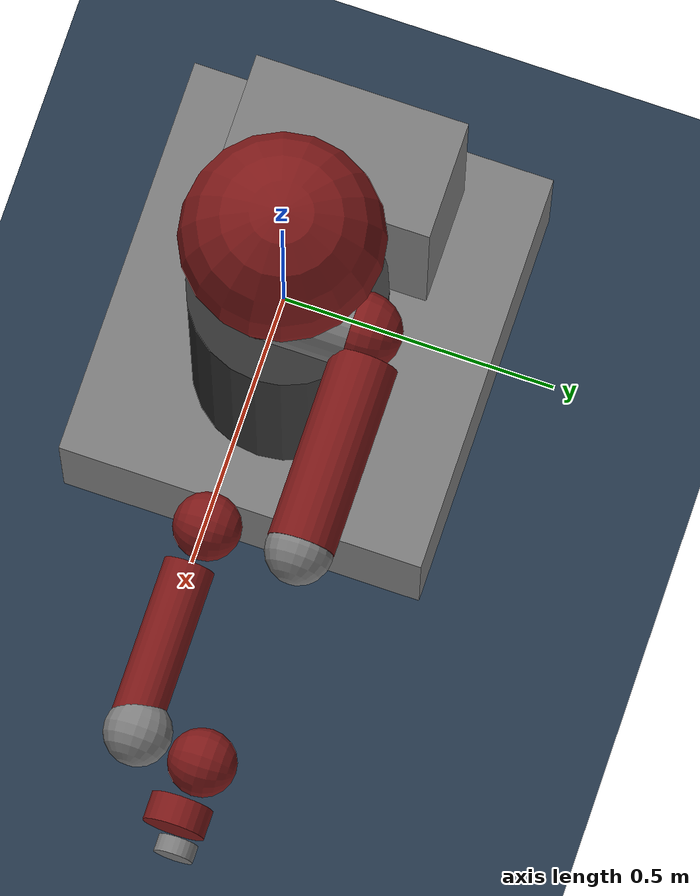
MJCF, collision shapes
<mujoco model="sawyer">
    <compiler angle="radian" meshdir="meshes/" />
    <size njmax="500" nconmax="100" />
    <actuator>
      <position ctrllimited="true" ctrlrange="-3.0503 3.0503" joint="right_j0" kp="50.0" name="right_j0"></position>
      <position ctrllimited="true" ctrlrange="-3.8095 2.2736" joint="right_j1" kp="30.0" name="right_j1"></position>
      <position ctrllimited="true" ctrlrange="-3.0426 3.0426" joint="right_j2" kp="20.0" name="right_j2"></position>
      <position ctrllimited="true" ctrlrange="-3.0439 3.0439" joint="right_j3" kp="15.0" name="right_j3"></position>
      <position ctrllimited="true" ctrlrange="-2.9761 2.9761" joint="right_j4" kp="10.0" name="right_j4"></position>
      <position ctrllimited="true" ctrlrange="-2.9761 2.9761" joint="right_j5" kp="5.0" name="right_j5"></position>
      <position ctrllimited="true" ctrlrange="-4.7124 4.7124" joint="right_j6" kp="2.0" name="right_j6"></position>
    </actuator>

    <asset>
        <mesh name="pedestal" file="pedestal.stl" />
        <mesh name="base" file="base.stl" />
        <mesh name="l0" file="l0.stl" />
        <mesh name="head" file="head.stl" />
        <mesh name="l1" file="l1.stl" />
        <mesh name="l2" file="l2.stl" />
        <mesh name="l3" file="l3.stl" />
        <mesh name="l4" file="l4.stl" />
        <mesh name="l5" file="l5.stl" />
        <mesh name="l6" file="l6.stl" />
        <texture type="skybox" builtin="gradient" rgb1=".9 .9 1." rgb2=".2 .3 .4" width="256" height="256"/>
        <texture name="texplane" type="2d" builtin="checker" rgb1=".2 .3 .4" rgb2=".1 0.15 0.2"  width="512" height="512"/>
        <material name="floorplane" reflectance="0.5" texture="texplane" texrepeat="1 1" texuniform="true"/>
    </asset>
    <worldbody>

        <geom name="floor" pos="0 0 -0.913" size="3 3 .125" type="plane" material="floorplane" condim="3"/>
        <light directional='false' diffuse='.8 .8 .8' specular='0.3 0.3 0.3' pos='1 1 4.0' dir='0 -.15 -1'/>
        <light directional='false' diffuse='.8 .8 .8' specular='0.3 0.3 0.3' pos='-3. -3. 4.0' dir='0 -.15 -1'/>

        <camera name="camera1" mode="fixed" pos="2.5 0 1.8" quat="0.653 0.271 0.271 0.653"/>

        <body name="base" pos="0 0 0">
            <inertial pos="0 0 0" mass="0" diaginertia="0 0 0" />
            <body name="controller_box" pos="0 0 0">
                <inertial pos="-0.325 0 -0.38" mass="46.64" diaginertia="1.71363 1.27988 0.809981" />
                <geom size="0.11 0.2 0.265" pos="-0.325 0 -0.38" type="box" />
            </body>
            <body name="pedestal_feet" pos="0 0 0">
                <inertial pos="-0.1225 0 -0.758" mass="167.09" diaginertia="8.16095 9.59375 15.0785" />
                <geom size="0.385 0.35 0.155" pos="-0.1225 0 -0.758" type="box" />
            </body>
            <body name="torso" pos="0 0 0">
                <inertial pos="0 0 0" mass="0.0001" diaginertia="1e-08 1e-08 1e-08" />
                <geom size="0.05 0.05 0.05" type="box" contype="0" conaffinity="0" group="1" rgba="0.2 0.2 0.2 1" />
            </body>
            <body name="pedestal" pos="0 0 0">
                <inertial pos="0 0 0" quat="0.659267 -0.259505 -0.260945 0.655692" mass="60.864" diaginertia="6.0869 5.81635 4.20915" />
                <geom pos="0.26 0.345 -0.91488" quat="0.5 0.5 -0.5 -0.5" type="mesh" contype="0" conaffinity="0" group="1" rgba="0.2 0.2 0.2 1" mesh="pedestal" />
                <geom size="0.18 0.31" pos="-0.02 0 -0.29" type="cylinder" rgba="0.2 0.2 0.2 1" />
            </body>
            <body name="right_arm_base_link" pos="0 0 0">
                <inertial pos="-0.0006241 -2.8025e-05 0.065404" quat="-0.209285 0.674441 0.227335 0.670558" mass="2.0687" diaginertia="0.00740351 0.00681776 0.00672942" />
                <geom type="mesh" contype="0" conaffinity="0" group="1" rgba="0.5 0.1 0.1 1" mesh="base" />
                <geom size="0.08 0.12" pos="0 0 0.12" type="cylinder" rgba="0.5 0.1 0.1 1" />
                <body name="right_l0" pos="0 0 0.08">
                    <inertial pos="0.024366 0.010969 0.14363" quat="0.894823 0.00899958 -0.170275 0.412573" mass="5.3213" diaginertia="0.0651588 0.0510944 0.0186218" />
                    <joint name="right_j0" pos="0 0 0" axis="0 0 1" limited="true" range="-3.0503 3.0503" />
                    <geom type="mesh" contype="0" conaffinity="0" group="1" rgba="0.5 0.1 0.1 1" mesh="l0" />
                    <geom size="0.07" pos="0.08 0 0.23" rgba="0.5 0.1 0.1 1" />
                    <body name="head" pos="0 0 0.2965">
                        <inertial pos="0.0053207 -2.6549e-05 0.1021" quat="0.999993 7.08405e-05 -0.00359857 -0.000626247" mass="1.5795" diaginertia="0.0118334 0.00827089 0.00496574" />
                        <joint name="head_pan" pos="0 0 0" axis="0 0 1" limited="true" range="-5.0952 0.9064" />
                        <geom type="mesh" contype="0" conaffinity="0" group="1" rgba="0.5 0.1 0.1 1" mesh="head" />
                        <geom size="0.18" pos="0 0 0.08" rgba="0.5 0.1 0.1 1" />
                        <body name="screen" pos="0.03 0 0.105" quat="0.5 0.5 0.5 0.5">
                            <inertial pos="0 0 0" mass="0.0001" diaginertia="1e-08 1e-08 1e-08" />
                            <geom size="0.12 0.07 0.001" type="box" contype="0" conaffinity="0" group="1" rgba="0.2 0.2 0.2 1" />
                            <geom size="0.001" rgba="0.2 0.2 0.2 1" />
                        </body>
                        <body name="head_camera" pos="0.0228027 0 0.216572" quat="0.342813 -0.618449 0.618449 -0.342813">
                            <inertial pos="0.0228027 0 0.216572" quat="0.342813 -0.618449 0.618449 -0.342813" mass="0" diaginertia="0 0 0" />
                        </body>
                    </body>
                    <body name="right_torso_itb" pos="-0.055 0 0.22" quat="0.707107 0 -0.707107 0">
                        <inertial pos="0 0 0" mass="0.0001" diaginertia="1e-08 1e-08 1e-08" />
                    </body>
                    <body name="right_l1" pos="0.081 0.05 0.237" quat="0.5 -0.5 0.5 0.5">
                        <inertial pos="-0.0030849 -0.026811 0.092521" quat="0.424888 0.891987 0.132364 -0.0794296" mass="4.505" diaginertia="0.0224339 0.0221624 0.0097097" />
                        <joint name="right_j1" pos="0 0 0" axis="0 0 1" limited="true" range="-3.8095 2.2736" />
                        <geom type="mesh" contype="0" conaffinity="0" group="1" rgba="0.5 0.1 0.1 1" mesh="l1" />
                        <geom size="0.07" pos="0 0 0.1225" rgba="0.5 0.1 0.1 1" />
                        <body name="right_l2" pos="0 -0.14 0.1425" quat="0.707107 0.707107 0 0">
                            <inertial pos="-0.00016044 -0.014967 0.13582" quat="0.707831 -0.0524761 0.0516007 0.702537" mass="1.745" diaginertia="0.0257928 0.025506 0.00292515" />
                            <joint name="right_j2" pos="0 0 0" axis="0 0 1" limited="true" range="-3.0426 3.0426" />
                            <geom type="mesh" contype="0" conaffinity="0" group="1" rgba="0.5 0.1 0.1 1" mesh="l2" />
                            <geom size="0.06 0.17" pos="0 0 0.08" type="cylinder" rgba="0.5 0.1 0.1 1" />
                            <body name="right_l3" pos="0 -0.042 0.26" quat="0.707107 -0.707107 0 0">
                                <inertial pos="-0.0048135 -0.0281 -0.084154" quat="0.902999 0.385391 -0.0880901 0.168247" mass="2.5097" diaginertia="0.0102404 0.0096997 0.00369622" />
                                <joint name="right_j3" pos="0 0 0" axis="0 0 1" limited="true" range="-3.0439 3.0439" />
                                <geom type="mesh" contype="0" conaffinity="0" group="1" rgba="0.5 0.1 0.1 1" mesh="l3" />
                                <geom size="0.06" pos="0 -0.01 -0.12" rgba="0.5 0.1 0.1 1" />
                                <body name="right_l4" pos="0 -0.125 -0.1265" quat="0.707107 0.707107 0 0">
                                    <inertial pos="-0.0018844 0.0069001 0.1341" quat="0.803612 0.031257 -0.0298334 0.593582" mass="1.1136" diaginertia="0.0136549 0.0135493 0.00127353" />
                                    <joint name="right_j4" pos="0 0 0" axis="0 0 1" limited="true" range="-2.9761 2.9761" />
                                    <geom type="mesh" contype="0" conaffinity="0" group="1" rgba="0.5 0.1 0.1 1" mesh="l4" />
                                    <geom size="0.045 0.15" pos="0 0 0.11" type="cylinder" rgba="0.5 0.1 0.1 1" />
                                    <body name="right_arm_itb" pos="-0.055 0 0.075" quat="0.707107 0 -0.707107 0">
                                        <inertial pos="0 0 0" mass="0.0001" diaginertia="1e-08 1e-08 1e-08" />
                                    </body>
                                    <body name="right_l5" pos="0 0.031 0.275" quat="0.707107 -0.707107 0 0">
                                        <inertial pos="0.0061133 -0.023697 0.076416" quat="0.404076 0.9135 0.0473125 0.00158335" mass="1.5625" diaginertia="0.00474131 0.00422857 0.00190672" />
                                        <joint name="right_j5" pos="0 0 0" axis="0 0 1" limited="true" range="-2.9761 2.9761" />
                                        <geom type="mesh" contype="0" conaffinity="0" group="1" rgba="0.5 0.1 0.1 1" mesh="l5" />
                                        <geom size="0.06" pos="0 0 0.1" rgba="0.5 0.1 0.1 1" />
                                        <body name="right_hand_camera" pos="0.039552 -0.033 0.0695" quat="0.707107 0 0.707107 0">
                                            <inertial pos="0.039552 -0.033 0.0695" quat="0.707107 0 0.707107 0" mass="0" diaginertia="0 0 0" />
                                        </body>
                                        <body name="right_wrist" pos="0 0 0.10541" quat="0.707107 0.707107 0 0">
                                            <inertial pos="0 0 0.10541" quat="0.707107 0.707107 0 0" mass="0" diaginertia="0 0 0" />
                                        </body>
                                        <body name="right_l6" pos="0 -0.11 0.1053" quat="0.0616248 0.06163 -0.704416 0.704416">
                                            <inertial pos="-8.0726e-06 0.0085838 -0.0049566" quat="0.479044 0.515636 -0.513069 0.491322" mass="0.3292" diaginertia="0.000360258 0.000311068 0.000214974" />
                                            <joint name="right_j6" pos="0 0 0" axis="0 0 1" limited="true" range="-4.7124 4.7124" />
                                            <geom type="mesh" contype="0" conaffinity="0" group="1" rgba="0.5 0.1 0.1 1" mesh="l6" />
                                            <geom size="0.055 0.025" pos="0 0.015 -0.01" type="cylinder" rgba="0.5 0.1 0.1 1" />
                                            <body name="right_hand" pos="0 0 0.0245" quat="0.707107 0 0 0.707107">
                                                <inertial pos="1e-08 1e-08 1e-08" quat="0.820473 0.339851 -0.17592 0.424708" mass="1e-08" diaginertia="1e-08 1e-08 1e-08" />
                                                <geom size="0.035 0.015" pos="0 0 0.02" type="cylinder" />
                                            </body>
                                        </body>
                                    </body>
                                    <body name="right_l4_2" pos="0 0 0">
                                        <inertial pos="1e-08 1e-08 1e-08" quat="0.820473 0.339851 -0.17592 0.424708" mass="1e-08" diaginertia="1e-08 1e-08 1e-08" />
                                        <geom size="0.06" pos="0 0.01 0.26" />
                                    </body>
                                </body>
                            </body>
                            <body name="right_l2_2" pos="0 0 0">
                                <inertial pos="1e-08 1e-08 1e-08" quat="0.820473 0.339851 -0.17592 0.424708" mass="1e-08" diaginertia="1e-08 1e-08 1e-08" />
                                <geom size="0.06" pos="0 0 0.26" />
                            </body>
                        </body>
                        <body name="right_l1_2" pos="0 0 0">
                            <inertial pos="1e-08 1e-08 1e-08" quat="0.820473 0.339851 -0.17592 0.424708" mass="1e-08" diaginertia="1e-08 1e-08 1e-08" />
                            <geom size="0.07 0.07" pos="0 0 0.035" type="cylinder" />
                        </body>
                    </body>
                </body>
            </body>
        </body>
    </worldbody>
</mujoco>
